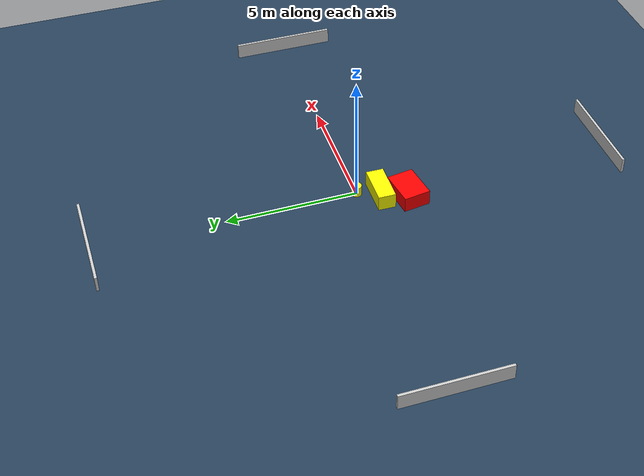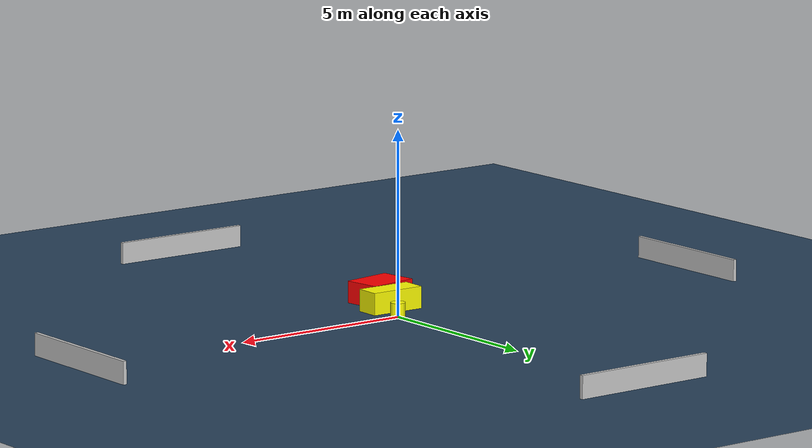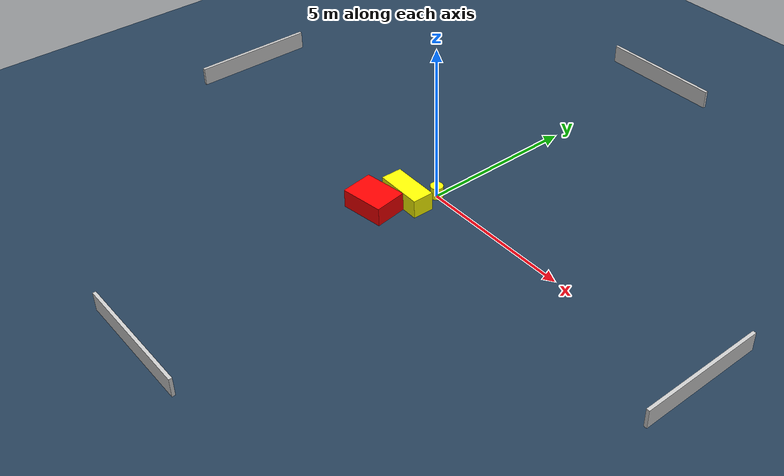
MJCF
<?xml version="1.0" ?>
<mujoco model="generated_environment">
  <option timestep="0.01" integrator="RK4" cone="elliptic"/>
  <default>
    <geom density="1"/>
  </default>
  <asset>
    <texture builtin="gradient" height="3072" name="skybox" rgb1="0.3 0.5 0.7" rgb2="0 0 0" type="skybox" width="512"/>
    <texture builtin="checker" height="300" name="groundplane" rgb1="0.2 0.3 0.4" rgb2="0.1 0.2 0.3" type="2d" width="300"/>
    <material name="groundplane" reflectance="0.2" texrepeat="5 5" texture="groundplane"/>
  </asset>
  <worldbody>
    <light dir="0 0 -1" directional="true" pos="0 0 1.5"/>
    <geom condim="3" friction="0.5 0.005 0.001" material="groundplane" name="floor" pos="0 0 0" size="0 0 0.05" type="plane"/>
    <body name="walls">
      <geom name="wall_1" condim="4" pos="-10.0 0.0 0.3" rgba="0.800000011920929 0.800000011920929 0.800000011920929 1.0" size="0.05 2.0 0.3" type="box"/>
      <geom name="wall_2" condim="4" pos="10.0 0.0 0.3" rgba="0.800000011920929 0.800000011920929 0.800000011920929 1.0" size="0.05 2.0 0.3" type="box"/>
      <geom name="wall_3" condim="4" pos="0.0 -10.0 0.3" rgba="0.800000011920929 0.800000011920929 0.800000011920929 1.0" size="2.0 0.05 0.3" type="box"/>
      <geom name="wall_4" condim="4" pos="0.0 10.0 0.3" rgba="0.800000011920929 0.800000011920929 0.800000011920929 1.0" size="2.0 0.05 0.3" type="box"/>
    </body>
    <body name="robot">
      <joint name="joint_x" type="slide" pos="0 0 0" axis="1 0 0"/>
      <joint name="joint_y" type="slide" pos="0 0 0" axis="0 1 0"/>
      <geom name="robot" type="cylinder" pos="0.0 0.0 0.2" size="0.2 0.2 0.0" mass="5.0" friction="1.0 0.005 0.0001" condim="4" rgba="1.0 1.0 0.0 1.0"/>
    </body>
    <body name="obstacle_1_movable">
      <geom name="obstacle_1_movable" condim="4" pos="-0.3801747006288683 -0.8263600811947314 0.3" euler="0 0 359.1559809406918" friction="0.0 0.005 0.001" rgba="1.0 1.0 0.0 1.0" size="0.7667800608786768 0.3349643770222374 0.3" type="box" mass="0.1"/>
      <joint type="free"/>
    </body>
    <body name="obstacle_2_static">
      <geom name="obstacle_2_static" condim="4" pos="-0.7560586695942508 -1.780542128420394 0.3" euler="0 0 98.4412239550132" friction="0.0 0.005 0.001" rgba="1.0 0.0 0.0 1.0" size="0.5149478223855932 0.6972600255858286 0.3" type="box"/>
    </body>
  </worldbody>
  <actuator>
    <motor name="actuator_x" joint="joint_x" gear="1" ctrlrange="-1 1"/>
    <motor name="actuator_y" joint="joint_y" gear="1" ctrlrange="-1 1"/>
  </actuator>
</mujoco>
